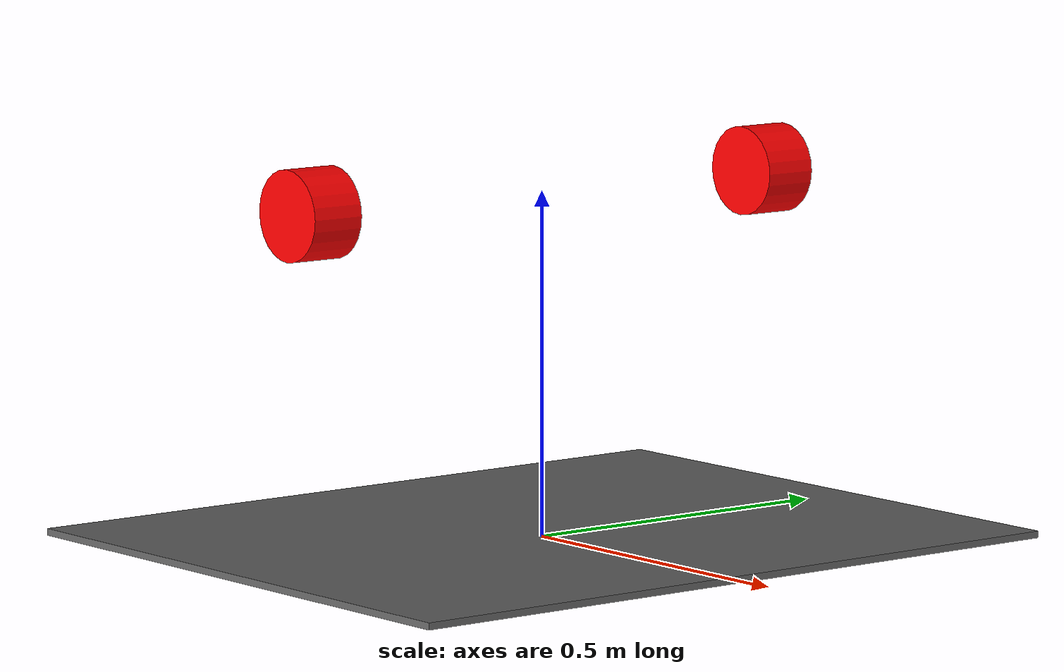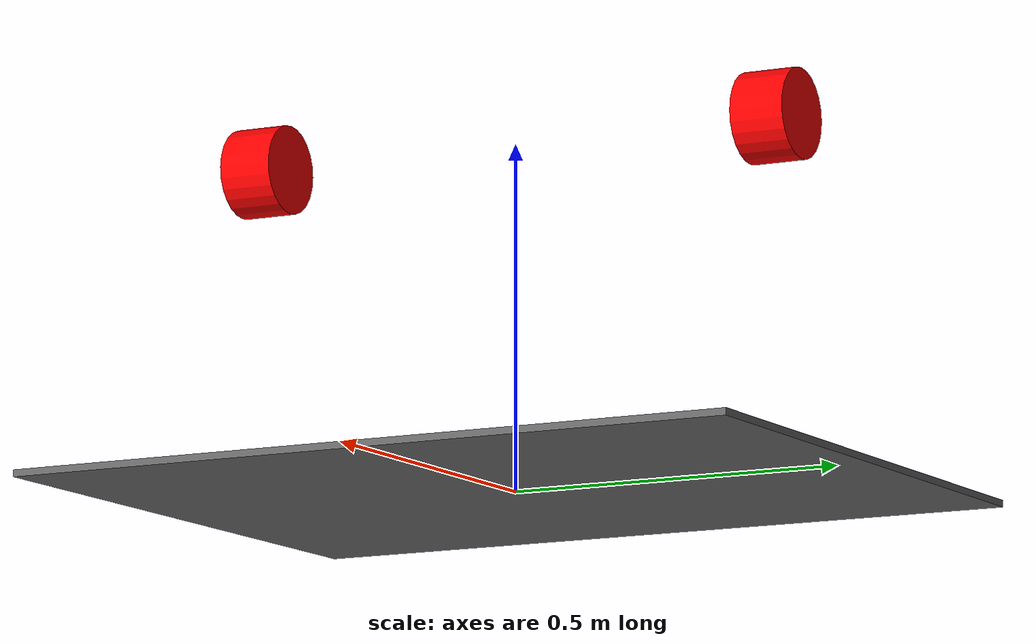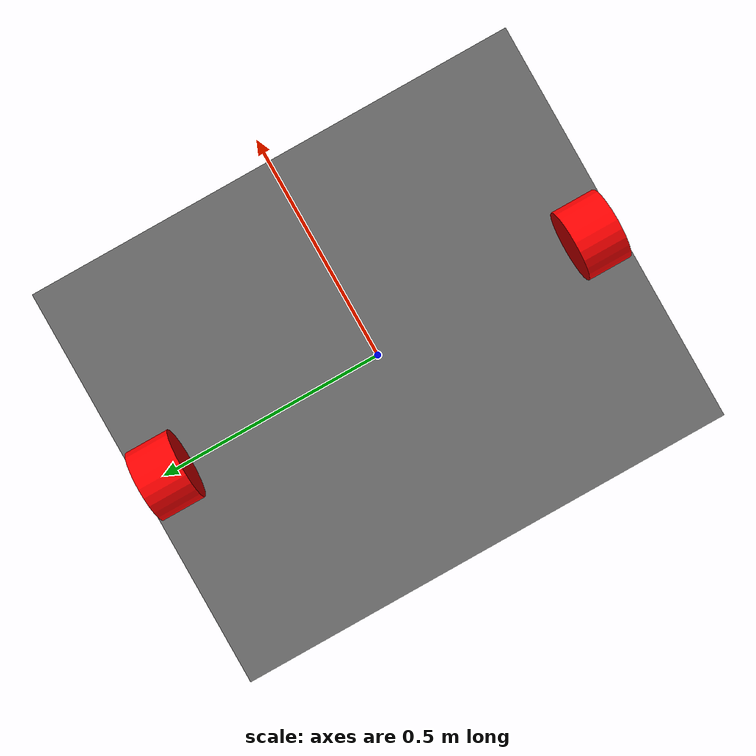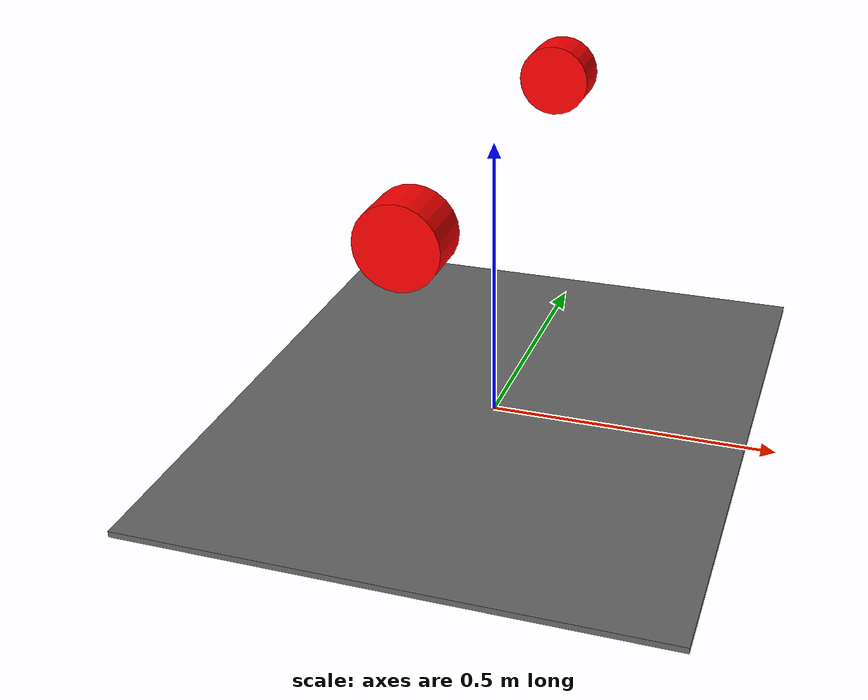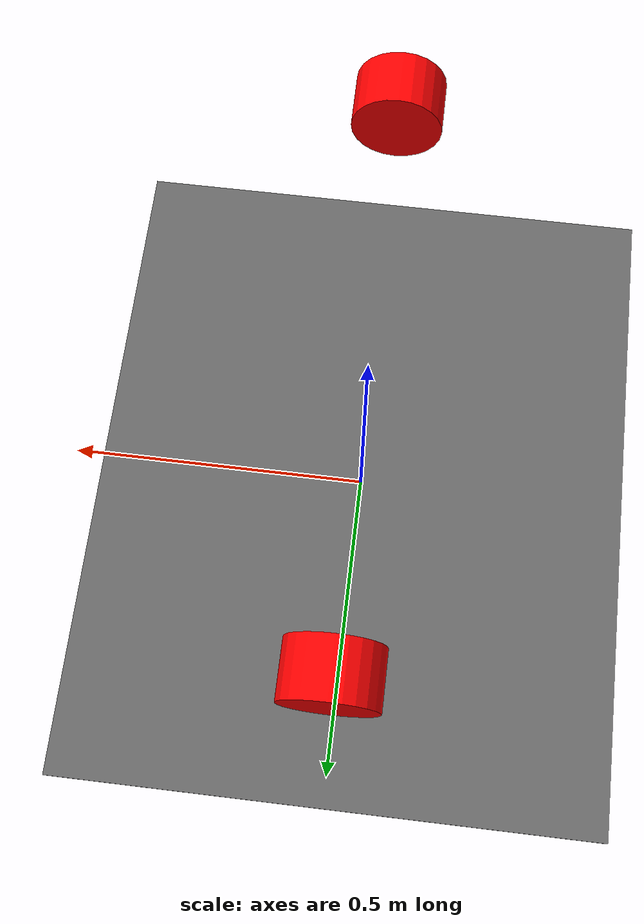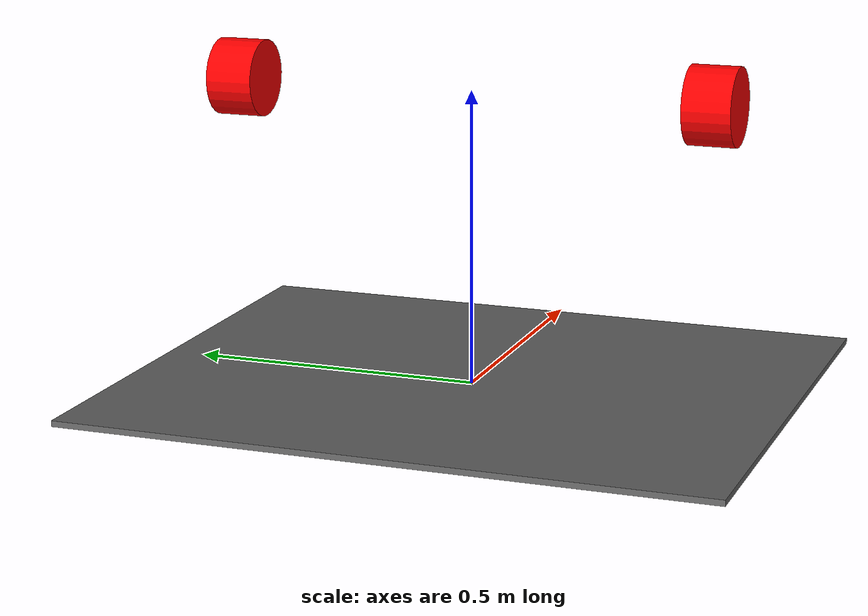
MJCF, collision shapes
<mujoco model="aloha_base_vertical_bimanual">
    <compiler angle="radian" meshdir="assets" autolimits="true" />

    <asset>
        <mesh file="vx300s_1_base.stl" scale="0.001 0.001 0.001" />
    </asset>

    <default>
        <default class="vx300s">
            <site group="4" />
            <default class="visual">
                <geom type="mesh" mass="0" group="2" contype="0" conaffinity="0" />
            </default>
            <default class="collision">
                <geom group="3" type="mesh" condim="6" friction="1 5e-3 5e-4" solref=".01 1" />
            </default>
        </default>
    </default>

    <worldbody>
        <body name="base_link" childclass="vx300s" pos="0 0 0.0" euler="0 0 0">
            <geom type="box" size="0.45 0.55 0.005" pos="0 0 0.005" class="collision"
                rgba="0.4 0.4 0.4 1" mass="2.0" />
            <body name="left_arm_holder" pos="0 0.45 0.50" euler="1.5707963267948966 0 0">
                <geom name="left_base_collision" type="cylinder" size="0.065 0.04"
                    pos="0 0 0.04" class="collision" rgba="1 0 0 1" mass="0.5" />
                <geom name="left_base_visual" quat="1 0 0 1" class="visual" mesh="vx300s_1_base"
                    pos="0 0 0" />
                <site name="left:shoulder_mount" pos="0 0 0.079" />
            </body>
            <!-- right arm holder: rotated -pi/2 around x; pan axis points toward +y. -->
            <body name="right_arm_holder" pos="0 -0.45 0.50" euler="-1.5707963267948966 0 0">
                <geom name="right_base_collision" type="cylinder" size="0.065 0.04"
                    pos="0 0 0.04" class="collision" rgba="1 0 0 1" mass="0.5" />
                <geom name="right_base_visual" quat="1 0 0 1" class="visual" mesh="vx300s_1_base"
                    pos="0 0 0" />
                <site name="right:shoulder_mount" pos="0 0 0.079" />
            </body>
        </body>
    </worldbody>

    <custom>
        <numeric name="base_link\body\pos\0\range\y" size='2' data='-0.8 -0.1' />
        <numeric name="base_link\body\pos\1\range\y" size='2' data='-0.0 0.0' />
        <numeric name="base_link\body\pos\2\range\y" size='2' data='-0.1 0.1' />

        <!-- symmetric arm mount x: both holders shifted by same x offset, varies in [-0.20, 0.20] -->
        <numeric name="left_arm_holder\body\pos\0\range\y" size='2' data='-0.80 0.80' />
        <text name="symmetric_arm_x"
            data="left_arm_holder\body\pos\0\range\y;right_arm_holder\body\pos\0\range\y" />

        <!-- symmetric arm mount z: both holders mounted at same height, varies in [0.30, 0.80] -->
        <numeric name="left_arm_holder\body\pos\2\range\y" size='2' data='-0.45 1.55' />
        <text name="symmetric_arm_z"
            data="left_arm_holder\body\pos\2\range\y;right_arm_holder\body\pos\2\range\y" />
    </custom>

</mujoco>
